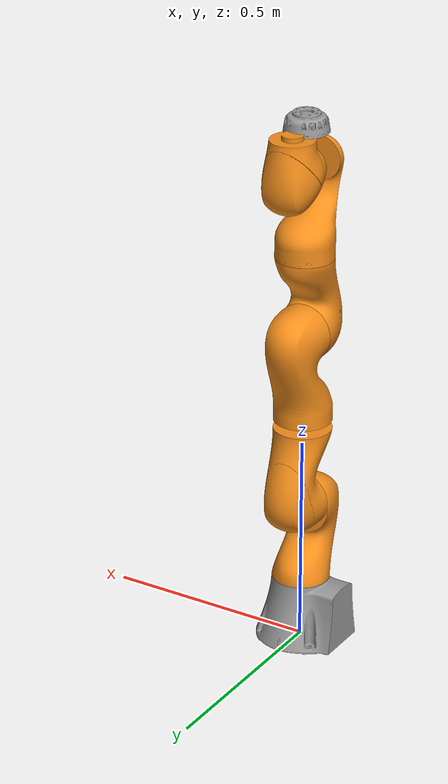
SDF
<?xml version="1.0" ?>
<sdf version='1.6'>
  <model name='iiwa14'>
    <link name='iiwa_link_0'>
      <pose frame=''>0 0 0 0 -0 0</pose>
      <inertial>
        <pose frame=''>-0.1 0 0.07 0 -0 0</pose>
        <mass>5</mass>
        <inertia>
          <ixx>0.05</ixx>
          <ixy>0</ixy>
          <ixz>0</ixz>
          <iyy>0.06</iyy>
          <iyz>0</iyz>
          <izz>0.03</izz>
        </inertia>
      </inertial>
      <collision name='iiwa_link_0_collision'>
        <pose frame=''>0 0 0 0 -0 0</pose>
        <geometry>
          <mesh>
            <scale>1 1 1</scale>
            <uri>model://iiwa_description/meshes/iiwa14/collision/link_0.stl</uri>
          </mesh>
        </geometry>
        <surface>
          <contact>
            <ode/>
          </contact>
          <friction>
            <ode>
              <mu>0.2</mu>
              <mu2>0.2</mu2>
            </ode>
          </friction>
        </surface>
      </collision>
      <visual name='iiwa_link_0_visual'>
        <pose frame=''>0 0 0 0 -0 0</pose>
        <geometry>
          <mesh>
            <scale>1 1 1</scale>
            <uri>model://iiwa_description/meshes/iiwa14/visual/link_0.stl</uri>
          </mesh>
        </geometry>
        <material>
          <script>
            <name>Gazebo/Grey</name>
            <uri>file://media/materials/scripts/gazebo.material</uri>
          </script>
        </material>
      </visual>
      <gravity>1</gravity>
      <velocity_decay/>
    </link>
    <joint name='world_iiwa_joint' type='fixed'>
      <child>iiwa_link_0</child>
      <parent>world</parent>
    </joint>
    <link name='iiwa_link_1'>
      <pose frame=''>0 0 0.1575 0 -0 0</pose>
      <inertial>
        <pose frame=''>0 -0.03 0.12 0 -0 0</pose>
        <mass>4</mass>
        <inertia>
          <ixx>0.1</ixx>
          <ixy>0</ixy>
          <ixz>0</ixz>
          <iyy>0.09</iyy>
          <iyz>0</iyz>
          <izz>0.02</izz>
        </inertia>
      </inertial>
      <collision name='iiwa_link_1_collision'>
        <pose frame=''>0 0 0 0 -0 0</pose>
        <geometry>
          <mesh>
            <scale>1 1 1</scale>
            <uri>model://iiwa_description/meshes/iiwa14/collision/link_1.stl</uri>
          </mesh>
        </geometry>
        <surface>
          <contact>
            <ode/>
          </contact>
          <friction>
            <ode>
              <mu>0.2</mu>
              <mu2>0.2</mu2>
            </ode>
          </friction>
        </surface>
      </collision>
      <visual name='iiwa_link_1_visual'>
        <pose frame=''>0 0 0 0 -0 0</pose>
        <geometry>
          <mesh>
            <scale>1 1 1</scale>
            <uri>model://iiwa_description/meshes/iiwa14/visual/link_1.stl</uri>
          </mesh>
        </geometry>
        <material>
          <script>
            <name>Gazebo/Orange</name>
            <uri>file://media/materials/scripts/gazebo.material</uri>
          </script>
        </material>
      </visual>
      <gravity>1</gravity>
      <velocity_decay/>
    </link>
    <joint name='iiwa_joint_1' type='revolute'>
      <child>iiwa_link_1</child>
      <parent>iiwa_link_0</parent>
      <axis>
        <xyz>0 0 1</xyz>
        <limit>
          <lower>-2.96706</lower>
          <upper>2.96706</upper>
          <effort>300</effort>
          <velocity>10</velocity>
        </limit>
        <dynamics>
          <damping>0.5</damping>
          <friction>0</friction>
          <spring_reference>0</spring_reference>
          <spring_stiffness>0</spring_stiffness>
        </dynamics>
        <use_parent_model_frame>1</use_parent_model_frame>
      </axis>
    </joint>
    <link name='iiwa_link_2'>
      <pose frame=''>0 0 0.36 1.5708 -0 -3.14159</pose>
      <inertial>
        <pose frame=''>0.0003 0.059 0.042 0 -0 0</pose>
        <mass>4</mass>
        <inertia>
          <ixx>0.05</ixx>
          <ixy>0</ixy>
          <ixz>0</ixz>
          <iyy>0.018</iyy>
          <iyz>0</iyz>
          <izz>0.044</izz>
        </inertia>
      </inertial>
      <collision name='iiwa_link_2_collision'>
        <pose frame=''>0 0 0 0 -0 0</pose>
        <geometry>
          <mesh>
            <scale>1 1 1</scale>
            <uri>model://iiwa_description/meshes/iiwa14/collision/link_2.stl</uri>
          </mesh>
        </geometry>
        <surface>
          <contact>
            <ode/>
          </contact>
          <friction>
            <ode>
              <mu>0.2</mu>
              <mu2>0.2</mu2>
            </ode>
          </friction>
        </surface>
      </collision>
      <visual name='iiwa_link_2_visual'>
        <pose frame=''>0 0 0 0 -0 0</pose>
        <geometry>
          <mesh>
            <scale>1 1 1</scale>
            <uri>model://iiwa_description/meshes/iiwa14/visual/link_2.stl</uri>
          </mesh>
        </geometry>
        <material>
          <script>
            <name>Gazebo/Orange</name>
            <uri>file://media/materials/scripts/gazebo.material</uri>
          </script>
        </material>
      </visual>
      <gravity>1</gravity>
      <velocity_decay/>
    </link>
    <joint name='iiwa_joint_2' type='revolute'>
      <child>iiwa_link_2</child>
      <parent>iiwa_link_1</parent>
      <axis>
        <xyz>-0 1 0</xyz>
        <limit>
          <lower>-2.0944</lower>
          <upper>2.0944</upper>
          <effort>300</effort>
          <velocity>10</velocity>
        </limit>
        <dynamics>
          <damping>0.5</damping>
          <friction>0</friction>
          <spring_reference>0</spring_reference>
          <spring_stiffness>0</spring_stiffness>
        </dynamics>
        <use_parent_model_frame>1</use_parent_model_frame>
      </axis>
    </joint>
    <link name='iiwa_link_3'>
      <pose frame=''>0 -0 0.5645 0 0 0</pose>
      <inertial>
        <pose frame=''>0 0.03 0.13 0 -0 0</pose>
        <mass>3</mass>
        <inertia>
          <ixx>0.08</ixx>
          <ixy>0</ixy>
          <ixz>0</ixz>
          <iyy>0.075</iyy>
          <iyz>0</iyz>
          <izz>0.01</izz>
        </inertia>
      </inertial>
      <collision name='iiwa_link_3_collision'>
        <pose frame=''>0 0 0 0 -0 0</pose>
        <geometry>
          <mesh>
            <scale>1 1 1</scale>
            <uri>model://iiwa_description/meshes/iiwa14/collision/link_3.stl</uri>
          </mesh>
        </geometry>
        <surface>
          <contact>
            <ode/>
          </contact>
          <friction>
            <ode>
              <mu>0.2</mu>
              <mu2>0.2</mu2>
            </ode>
          </friction>
        </surface>
      </collision>
      <visual name='iiwa_link_3_visual'>
        <pose frame=''>0 0 0 0 -0 0</pose>
        <geometry>
          <mesh>
            <scale>1 1 1</scale>
            <uri>model://iiwa_description/meshes/iiwa14/visual/link_3.stl</uri>
          </mesh>
        </geometry>
        <material>
          <script>
            <name>Gazebo/Orange</name>
            <uri>file://media/materials/scripts/gazebo.material</uri>
          </script>
        </material>
      </visual>
      <gravity>1</gravity>
      <velocity_decay/>
    </link>
    <joint name='iiwa_joint_3' type='revolute'>
      <child>iiwa_link_3</child>
      <parent>iiwa_link_2</parent>
      <axis>
        <xyz>0 0 1</xyz>
        <limit>
          <lower>-2.96706</lower>
          <upper>2.96706</upper>
          <effort>300</effort>
          <velocity>10</velocity>
        </limit>
        <dynamics>
          <damping>0.5</damping>
          <friction>0</friction>
          <spring_reference>0</spring_reference>
          <spring_stiffness>0</spring_stiffness>
        </dynamics>
        <use_parent_model_frame>1</use_parent_model_frame>
      </axis>
    </joint>
    <link name='iiwa_link_4'>
      <pose frame=''>0 -0 0.78 1.5708 0 0</pose>
      <inertial>
        <pose frame=''>0 0.067 0.034 0 -0 0</pose>
        <mass>2.7</mass>
        <inertia>
          <ixx>0.03</ixx>
          <ixy>0</ixy>
          <ixz>0</ixz>
          <iyy>0.01</iyy>
          <iyz>0</iyz>
          <izz>0.029</izz>
        </inertia>
      </inertial>
      <collision name='iiwa_link_4_collision'>
        <pose frame=''>0 0 0 0 -0 0</pose>
        <geometry>
          <mesh>
            <scale>1 1 1</scale>
            <uri>model://iiwa_description/meshes/iiwa14/collision/link_4.stl</uri>
          </mesh>
        </geometry>
        <surface>
          <contact>
            <ode/>
          </contact>
          <friction>
            <ode>
              <mu>0.2</mu>
              <mu2>0.2</mu2>
            </ode>
          </friction>
        </surface>
      </collision>
      <visual name='iiwa_link_4_visual'>
        <pose frame=''>0 0 0 0 -0 0</pose>
        <geometry>
          <mesh>
            <scale>1 1 1</scale>
            <uri>model://iiwa_description/meshes/iiwa14/visual/link_4.stl</uri>
          </mesh>
        </geometry>
        <material>
          <script>
            <name>Gazebo/Orange</name>
            <uri>file://media/materials/scripts/gazebo.material</uri>
          </script>
        </material>
      </visual>
      <gravity>1</gravity>
      <velocity_decay/>
    </link>
    <joint name='iiwa_joint_4' type='revolute'>
      <child>iiwa_link_4</child>
      <parent>iiwa_link_3</parent>
      <axis>
        <xyz>0 -1 0</xyz>
        <limit>
          <lower>-2.0944</lower>
          <upper>2.0944</upper>
          <effort>300</effort>
          <velocity>10</velocity>
        </limit>
        <dynamics>
          <damping>0.5</damping>
          <friction>0</friction>
          <spring_reference>0</spring_reference>
          <spring_stiffness>0</spring_stiffness>
        </dynamics>
        <use_parent_model_frame>1</use_parent_model_frame>
      </axis>
    </joint>
    <link name='iiwa_link_5'>
      <pose frame=''>0 -0 0.9645 0 -0 -3.14159</pose>
      <inertial>
        <pose frame=''>0.0001 0.021 0.076 0 -0 0</pose>
        <mass>1.7</mass>
        <inertia>
          <ixx>0.02</ixx>
          <ixy>0</ixy>
          <ixz>0</ixz>
          <iyy>0.018</iyy>
          <iyz>0</iyz>
          <izz>0.005</izz>
        </inertia>
      </inertial>
      <collision name='iiwa_link_5_collision'>
        <pose frame=''>0 0 0 0 -0 0</pose>
        <geometry>
          <mesh>
            <scale>1 1 1</scale>
            <uri>model://iiwa_description/meshes/iiwa14/collision/link_5.stl</uri>
          </mesh>
        </geometry>
        <surface>
          <contact>
            <ode/>
          </contact>
          <friction>
            <ode>
              <mu>0.2</mu>
              <mu2>0.2</mu2>
            </ode>
          </friction>
        </surface>
      </collision>
      <visual name='iiwa_link_5_visual'>
        <pose frame=''>0 0 0 0 -0 0</pose>
        <geometry>
          <mesh>
            <scale>1 1 1</scale>
            <uri>model://iiwa_description/meshes/iiwa14/visual/link_5.stl</uri>
          </mesh>
        </geometry>
        <material>
          <script>
            <name>Gazebo/Orange</name>
            <uri>file://media/materials/scripts/gazebo.material</uri>
          </script>
        </material>
      </visual>
      <gravity>1</gravity>
      <velocity_decay/>
    </link>
    <joint name='iiwa_joint_5' type='revolute'>
      <child>iiwa_link_5</child>
      <parent>iiwa_link_4</parent>
      <axis>
        <xyz>0 0 1</xyz>
        <limit>
          <lower>-2.96706</lower>
          <upper>2.96706</upper>
          <effort>300</effort>
          <velocity>10</velocity>
        </limit>
        <dynamics>
          <damping>0.5</damping>
          <friction>0</friction>
          <spring_reference>0</spring_reference>
          <spring_stiffness>0</spring_stiffness>
        </dynamics>
        <use_parent_model_frame>1</use_parent_model_frame>
      </axis>
    </joint>
    <link name='iiwa_link_6'>
      <pose frame=''>0 0 1.18 1.5708 -0 -3.14159</pose>
      <inertial>
        <pose frame=''>0 0.0006 0.0004 0 -0 0</pose>
        <mass>1.8</mass>
        <inertia>
          <ixx>0.005</ixx>
          <ixy>0</ixy>
          <ixz>0</ixz>
          <iyy>0.0036</iyy>
          <iyz>0</iyz>
          <izz>0.0047</izz>
        </inertia>
      </inertial>
      <collision name='iiwa_link_6_collision'>
        <pose frame=''>0 0 0 0 -0 0</pose>
        <geometry>
          <mesh>
            <scale>1 1 1</scale>
            <uri>model://iiwa_description/meshes/iiwa14/collision/link_6.stl</uri>
          </mesh>
        </geometry>
        <surface>
          <contact>
            <ode/>
          </contact>
          <friction>
            <ode>
              <mu>0.2</mu>
              <mu2>0.2</mu2>
            </ode>
          </friction>
        </surface>
      </collision>
      <visual name='iiwa_link_6_visual'>
        <pose frame=''>0 0 0 0 -0 0</pose>
        <geometry>
          <mesh>
            <scale>1 1 1</scale>
            <uri>model://iiwa_description/meshes/iiwa14/visual/link_6.stl</uri>
          </mesh>
        </geometry>
        <material>
          <script>
            <name>Gazebo/Orange</name>
            <uri>file://media/materials/scripts/gazebo.material</uri>
          </script>
        </material>
      </visual>
      <gravity>1</gravity>
      <velocity_decay/>
    </link>
    <joint name='iiwa_joint_6' type='revolute'>
      <child>iiwa_link_6</child>
      <parent>iiwa_link_5</parent>
      <axis>
        <xyz>-0 1 -0</xyz>
        <limit>
          <lower>-2.0944</lower>
          <upper>2.0944</upper>
          <effort>300</effort>
          <velocity>10</velocity>
        </limit>
        <dynamics>
          <damping>0.5</damping>
          <friction>0</friction>
          <spring_reference>0</spring_reference>
          <spring_stiffness>0</spring_stiffness>
        </dynamics>
        <use_parent_model_frame>1</use_parent_model_frame>
      </axis>
    </joint>
    <link name='iiwa_link_7'>
      <pose frame=''>0 0 1.261 0 0 0</pose>
      <inertial>
        <pose frame=''>0 0 0.02 0 -0 0</pose>
        <mass>0.3</mass>
        <inertia>
          <ixx>0.001</ixx>
          <ixy>0</ixy>
          <ixz>0</ixz>
          <iyy>0.001</iyy>
          <iyz>0</iyz>
          <izz>0.001</izz>
        </inertia>
      </inertial>
      <collision name='iiwa_link_7_collision'>
        <pose frame=''>0 0 0 0 -0 0</pose>
        <geometry>
          <mesh>
            <scale>1 1 1</scale>
            <uri>model://iiwa_description/meshes/iiwa14/collision/link_7.stl</uri>
          </mesh>
        </geometry>
        <surface>
          <contact>
            <ode/>
          </contact>
          <friction>
            <ode>
              <mu>0.2</mu>
              <mu2>0.2</mu2>
            </ode>
          </friction>
        </surface>
      </collision>
      <visual name='iiwa_link_7_visual'>
        <pose frame=''>0 0 0 0 -0 0</pose>
        <geometry>
          <mesh>
            <scale>1 1 1</scale>
            <uri>model://iiwa_description/meshes/iiwa14/visual/link_7.stl</uri>
          </mesh>
        </geometry>
        <material>
          <script>
            <name>Gazebo/Grey</name>
            <uri>file://media/materials/scripts/gazebo.material</uri>
          </script>
        </material>
      </visual>
      <gravity>1</gravity>
      <velocity_decay/>
    </link>
    <joint name='iiwa_joint_7' type='revolute'>
      <child>iiwa_link_7</child>
      <parent>iiwa_link_6</parent>
      <axis>
        <xyz>0 0 1</xyz>
        <limit>
          <lower>-3.05433</lower>
          <upper>3.05433</upper>
          <effort>300</effort>
          <velocity>10</velocity>
        </limit>
        <dynamics>
          <damping>0.5</damping>
          <friction>0</friction>
          <spring_reference>0</spring_reference>
          <spring_stiffness>0</spring_stiffness>
        </dynamics>
        <use_parent_model_frame>1</use_parent_model_frame>
      </axis>
    </joint>

    <!-- iiwa_link_ee and iiwa_link_ee_kuka links were absent in URDF-SDF converted file.
    Thus, they are added manually  -->

    <link name="iiwa_link_ee">
      <pose frame=''>0 0 1.2660 0 -1.57079632679 0</pose>
    </link>
    <link name="iiwa_link_ee_kuka">
      <pose frame=''>0 0 1.2660 3.14159265359 3.14159265359 3.14159265359</pose>
    </link>

	<!-- iiwa_joint_ee and iiwa_joint_ee_kuka joints were absent in URDF-SDF converted file.
    Thus, they are added manually  -->

    <joint name='iiwa_joint_ee' type='fixed'>
      <child>iiwa_link_ee</child>
      <parent>iiwa_link_7</parent>
    </joint>
    <joint name='iiwa_joint_ee_kuka' type='fixed'>
      <child>iiwa_link_ee_kuka</child>
      <parent>iiwa_link_7</parent>
      <axis>
        <xyz>0 0 1</xyz>
      </axis>
    </joint>

    <static>0</static>
    <plugin name='gazebo_ros_control' filename='libgazebo_ros_control.so'>
      <robotNamespace>/iiwa</robotNamespace>
    </plugin>
  </model>
</sdf>
